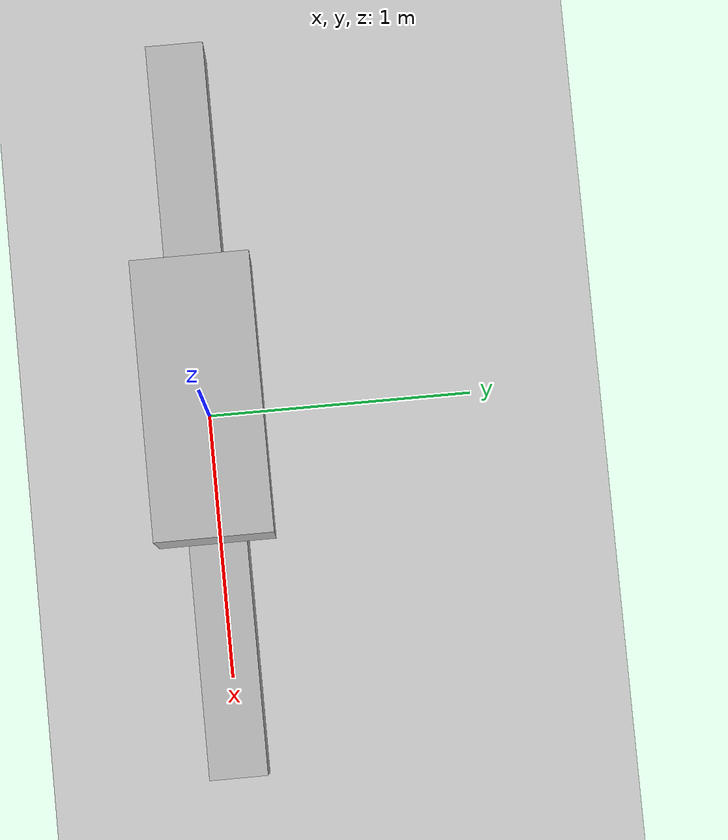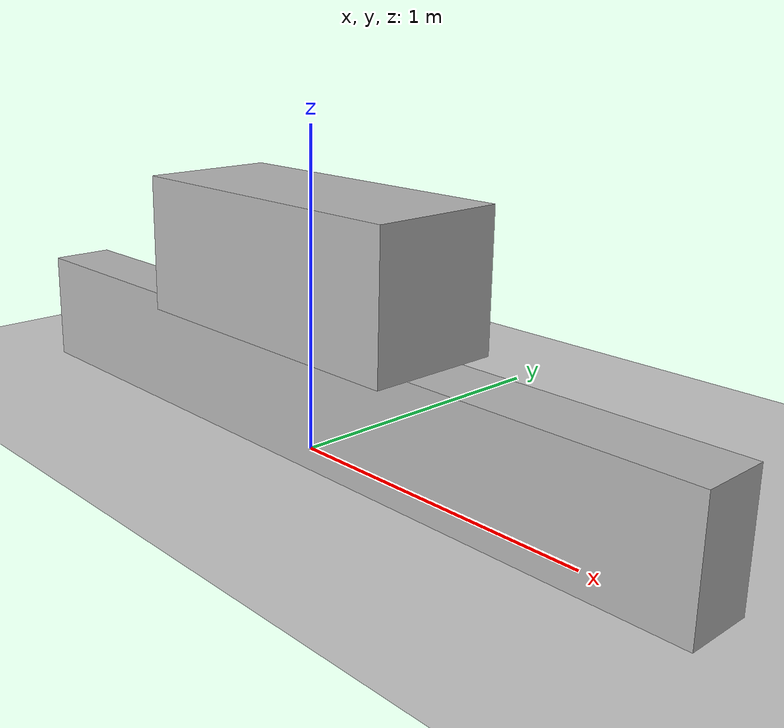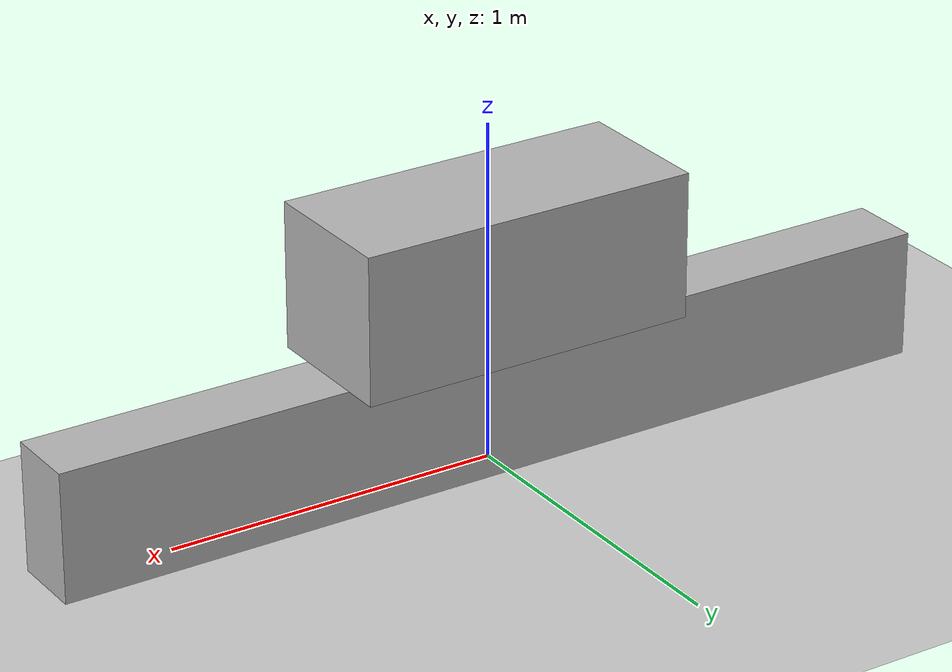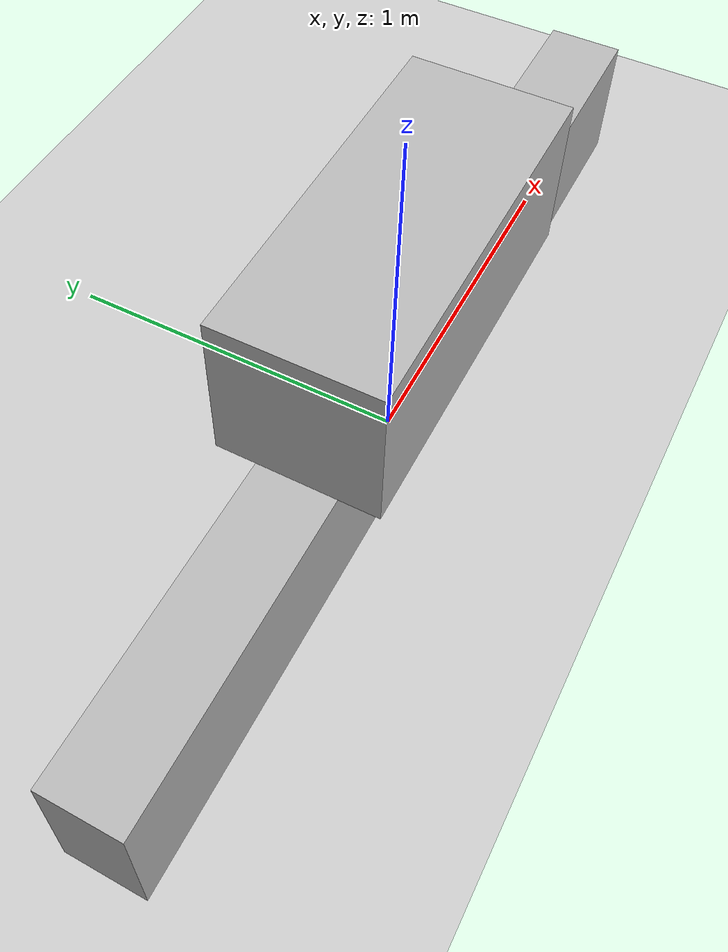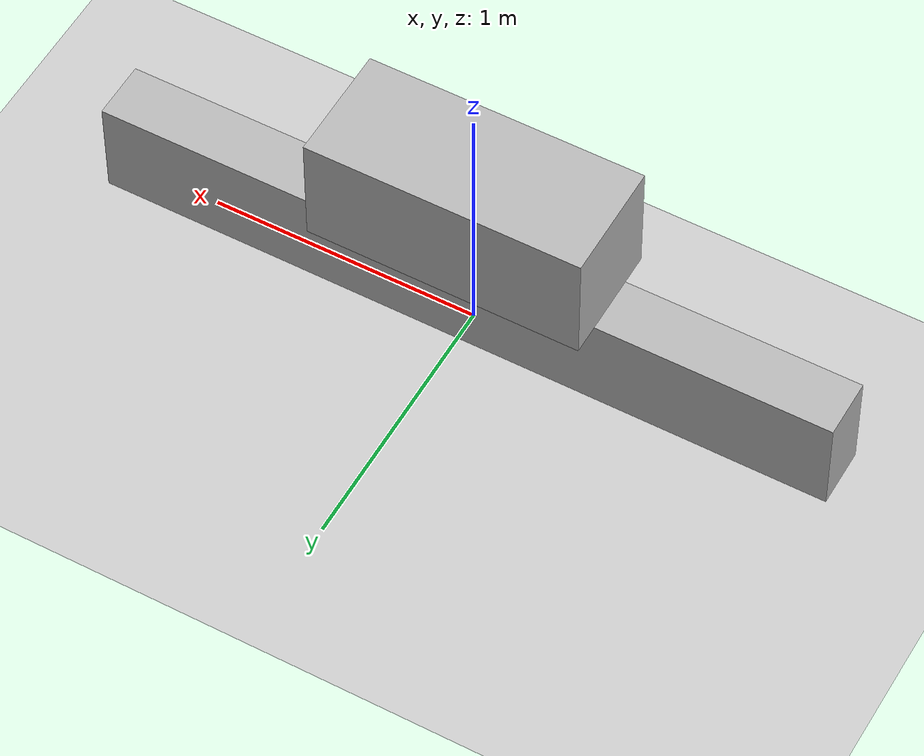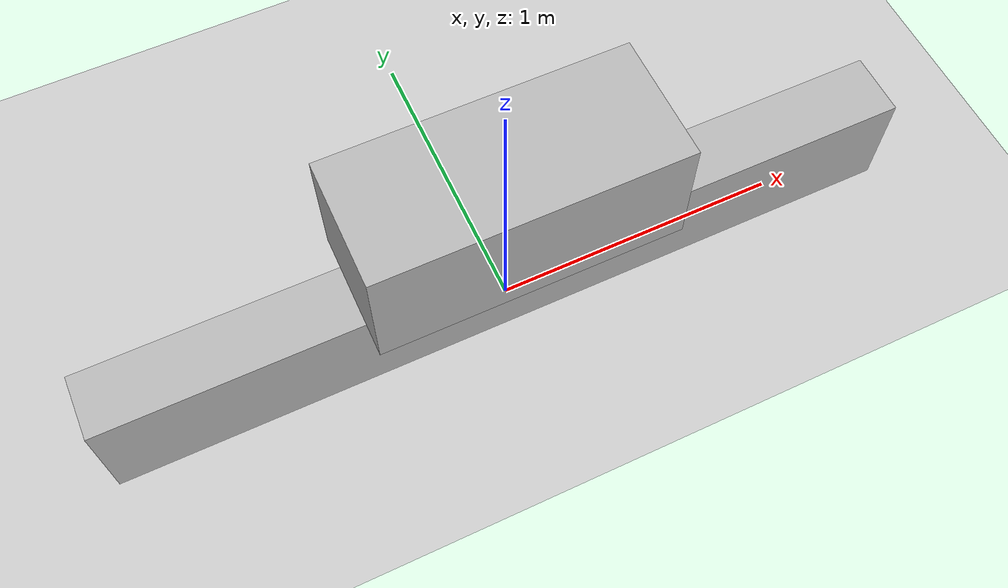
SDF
<?xml version="1.0" ?>
<sdf version="1.4">
  <world name="default">
    <!-- Ground Plane -->
    <include>
      <uri>model://ground_plane</uri>
    </include>
    <include>
      <uri>model://sun</uri>
    </include>
    <include>
      <uri>model://track_model_ros</uri>
    </include>
  </world>
</sdf>

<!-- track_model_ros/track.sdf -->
<sdf version="1.4">
	<model name="track4wam">
		<link name="track_link0">
			<pose>-1.3716 -0.10795 0.000000 0.000000 0.000000 0.000000</pose> <!-- note: Z MIGHT BE ZERO CUZ SAVE AS STL REQUIRES BOTTOM SURFACE? ignore: might be 107.95 -->
			<inertial>
				<pose>0.000000 0.000000 0.000000 0.000000 0.000000 0.000000</pose>
				<mass>200.000000</mass>
				<inertia>
					<ixx>1.000000</ixx>
					<ixy>0.000000</ixy>
					<ixz>0.000000</ixz>
					<iyy>1.000000</iyy>
					<iyz>0.000000</iyz>
					<izz>1.000000</izz>
				</inertia>
			</inertial>
			<collision name="track_link0_collision">
				<pose>0.000000 0.000000 0.000000 0.000000 0.000000 0.000000</pose>
				<geometry>
					<mesh>
						<scale>0.001000 0.001000 0.001000</scale>
						<!-- note: cuz gazebo scale apparently in mm, whereas stl models are in m -->
						<uri>model://track_model_ros/meshes/track.STL</uri>
					</mesh>
				</geometry>
				<surface>
					<contact>
						<ode />
					</contact>
					<friction>
						<ode />
					</friction>
				</surface>
			</collision>
			<visual name="track_link0_vis">
				<pose>0.000000 0.000000 0.000000 0.000000 0.000000 0.000000</pose>
				<geometry>
					<mesh>
						<scale>0.001000 0.001000 0.001000</scale>
						<uri>model://track_model_ros/meshes/track.STL</uri>
					</mesh>
				</geometry>
				<material />
			</visual>
			<gravity>1</gravity>
			<velocity_decay>
				<linear>0.000000</linear>
				<angular>0.000000</angular>
			</velocity_decay>
			<self_collide>1</self_collide>
		</link>
        <joint name="track0_fix" type="fixed">
			<child>track_link0</child>
			<parent>world</parent>
			<axis>
				<limit>
					<lower>0.000000</lower>
					<upper>0.000000</upper>
				</limit>
				<dynamics>
					<damping>0.000000</damping>
				</dynamics>
				<xyz>0.000000 0.000000 1.000000</xyz>
			</axis>
		</joint>
		<link name="track_link1">
			<pose>-0.508 -0.2159 0.381 0.000000 0.000000 0.000000</pose> <!-- note: might be *1000? -->
			<inertial>
				<pose>0.000000 0.000000 0.000000 0.000000 0.000000 0.000000</pose>
				<mass>15.000000</mass>
				<inertia>
					<ixx>1.000000</ixx>
					<ixy>0.000000</ixy>
					<ixz>0.000000</ixz>
					<iyy>1.000000</iyy>
					<iyz>0.000000</iyz>
					<izz>1.000000</izz>
				</inertia>
			</inertial>
			<collision name="track_link1_collision">
				<pose>0.000000 0.000000 0.000000 0.000000 0.000000 0.000000</pose>
				<geometry>
					<mesh>
						<scale>0.001000 0.001000 0.001000</scale>
						<uri>model://track_model_ros/meshes/carriage.STL</uri>
					</mesh>
				</geometry>
				<surface>
					<contact>
						<ode />
					</contact>
					<friction>
						<ode />
					</friction>
				</surface>
			</collision>
			<visual name="track_link1_vis">
				<pose>0.000000 0.000000 0.000000 0.000000 0.000000 0.000000</pose>
				<geometry>
					<mesh>
						<scale>0.001000 0.001000 0.001000</scale>
						<uri>model://track_model_ros/meshes/carriage.STL</uri>
					</mesh>
				</geometry>
				<material />
			</visual>
			<gravity>1</gravity>
			<velocity_decay>
				<linear>0.000000</linear>
				<angular>0.000000</angular>
			</velocity_decay>
			<self_collide>1</self_collide>
		</link>
        <joint name="t1_joint" type="prismatic">
			<child>track_link1</child>
			<parent>track_link0</parent>
			<!-- added: -->
			<axis>
                <xyz>1.000000 0.000000 0.000000</xyz>
				<limit>
					<lower>-2.00000</lower>
					<upper>2.00000</upper>
					<effort>30.000000</effort>
					<velocity>2.000000</velocity>
				</limit>
				<dynamics>
					<damping>1</damping>
				</dynamics>
			</axis>
		</joint>

    <plugin name="ros_track_plugin" filename="build/libros_track_plugin.so" />
	</model>
</sdf>
